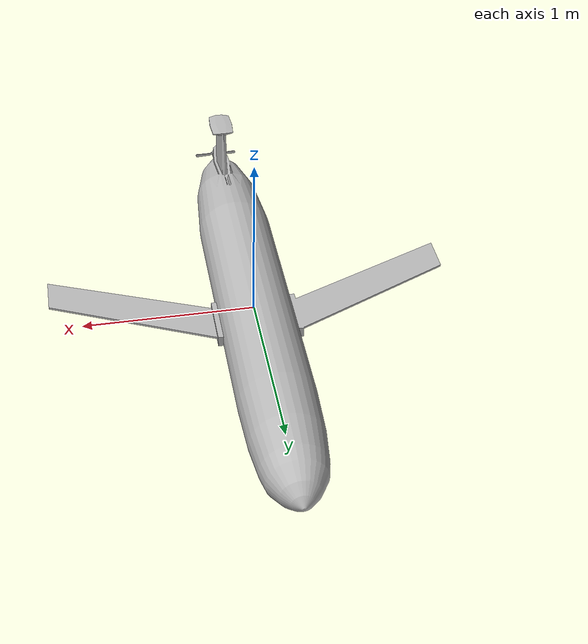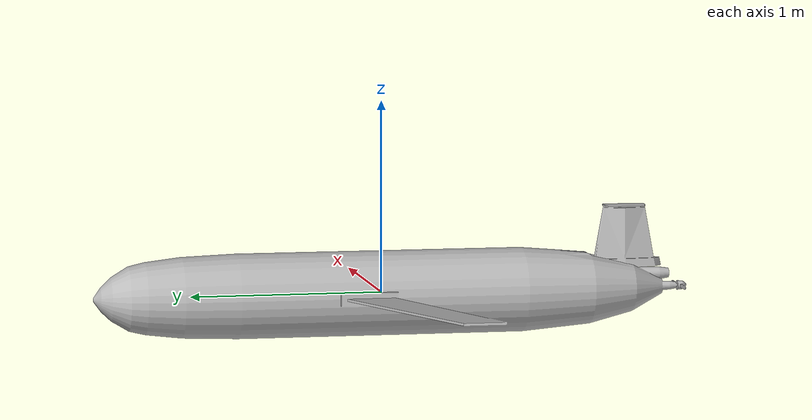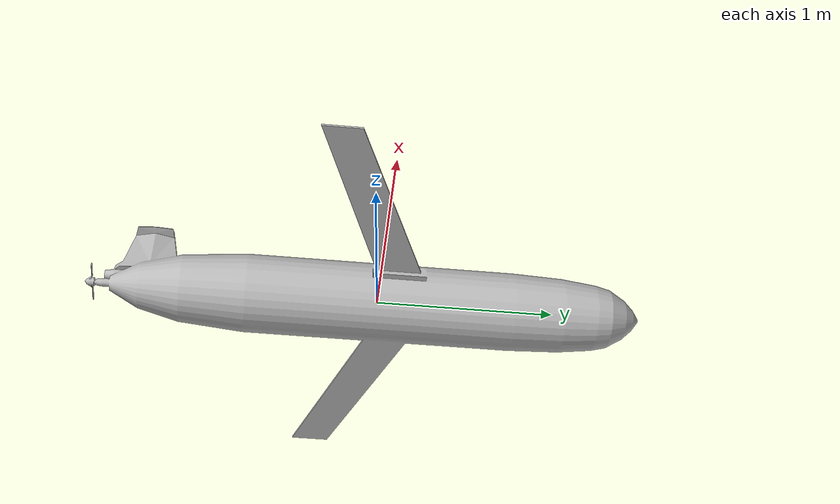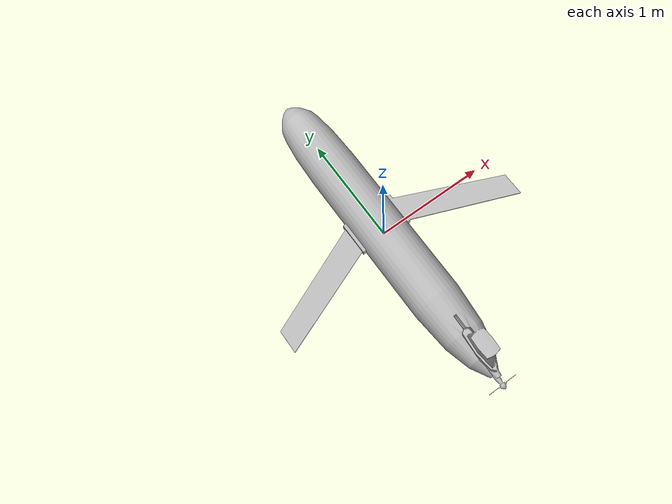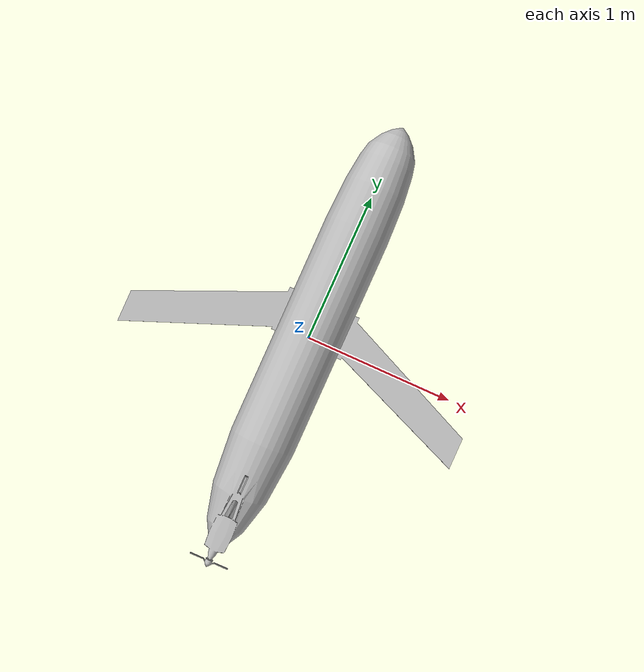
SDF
<?xml version="1.0"?>
<sdf version="1.6">
  <model name="glider_slocum">
    <static>false</static>
    <link name="base_link">
      <visual name="base_link_visual">
        <pose>0 0 0 0 0 0</pose>
        <geometry>
          <mesh>
            <scale>1.0 1.0 1.0</scale>
            <uri>model://glider_slocum/mesh/Slocum-Glider.dae</uri>
          </mesh>
        </geometry>
      </visual>
      <collision name="base_link_collision">
        <pose>0 0 0 0 0 0</pose>
        <geometry>
          <mesh>
            <scale>1.0 1.0 1.0</scale>
            <uri>model://glider_slocum/mesh/COLLISION-Slocum-Glider.dae</uri>
          </mesh>
        </geometry>
      </collision>
      <inertial>
          <pose>0 0 0 0 0 0</pose>
          <mass>69.25</mass>
          <inertia>
              <ixx>10</ixx>
              <ixy>0</ixy>
              <ixz>0</ixz>
              <iyy>10</iyy>
              <iyz>0</iyz>
              <izz>10</izz>
          </inertia>
      </inertial>
    </link>
    <link name='battery_link'>
      <pose>0 0 0 0 0 0</pose>
      <inertial>
        <pose>0 0 0 0 0 0</pose>
        <mass>0.001</mass>
        <inertia>
          <ixx>1e-05</ixx>
          <ixy>0</ixy>
          <ixz>0</ixz>
          <iyy>1e-05</iyy>
          <iyz>0</iyz>
          <izz>1e-05</izz>
        </inertia>
      </inertial>
      <battery name='battery'>
        <voltage>4.2</voltage>
      </battery>
    </link>
    <joint name='battery_joint' type='fixed'>
      <pose>0 0 0 0 0 0</pose>
      <parent>base_link</parent>
      <child>battery_link</child>
    </joint>
    <link name="propeller_link">
      <visual name="propeller_link_visual">
        <pose>0 0 0 0 0 0</pose>
        <geometry>
          <mesh>
            <scale>1.0 1.0 1.0</scale>
            <uri>model://glider_slocum/mesh/Slocum-Glider-Propeller.dae</uri>
          </mesh>
        </geometry>
      </visual>
      <inertial>
          <pose>0 0 0 0 0 0</pose>
          <inertia>
              <ixx>0.1</ixx>
              <ixy>0</ixy>
              <ixz>0</ixz>
              <iyy>0.1</iyy>
              <iyz>0</iyz>
              <izz>0.1</izz>
          </inertia>
          <mass>0.5</mass>
      </inertial>
    </link>
    <joint name="propeller_joint" type="revolute">
        <pose>0 0 0 0 0 0</pose>
        <parent>base_link</parent>
        <child>propeller_link</child>
        <axis>
            <xyz>0 1 0</xyz>
        </axis>
    </joint>
    <plugin name='linear_battery_ros_plugin' filename='liblinear_battery_ros_plugin.so'>
      <namespace>/</namespace>
      <link_name>battery_link</link_name>
      <battery_name>battery</battery_name>
      <open_circuit_voltage_constant_coef>3.7</open_circuit_voltage_constant_coef>
      <open_circuit_voltage_linear_coef>-3.1424</open_circuit_voltage_linear_coef>
      <initial_charge>1.1665</initial_charge>
      <capacity>0.5</capacity>
      <resistance>0.002</resistance>
      <smooth_current_tau>1.9499</smooth_current_tau>
      <update_rate>2.0</update_rate>
      <robotNamespace>/</robotNamespace>
    </plugin>
    <plugin name='glider_slocum_thruster_model' filename='libuuv_thruster_ros_plugin.so'>
      <linkName>propeller_link</linkName>
      <jointName>propeller_joint</jointName>
      <thrusterID>0</thrusterID>
      <dynamics>
        <type>FirstOrder</type>
        <timeConstant>0.1</timeConstant>
      </dynamics>
      <conversion>
        <type>Basic</type>
        <rotorConstant>4.9e-05</rotorConstant>
      </conversion>
      <robotNamespace>/</robotNamespace>
    </plugin>
    <plugin name='glider_slocum_plugin' filename='libuuv_underwater_object_ros_plugin.so'>
      <fluid_density>1027.0</fluid_density>
      <flow_velocity_topic>hydrodynamics/current_velocity</flow_velocity_topic>
      <debug>0</debug>
      <link name='base_link'>
        <volume>0.0679998770412</volume>
        <center_of_buoyancy>0 0 0.06</center_of_buoyancy>
        <neutrally_buoyant>0</neutrally_buoyant>
        <hydrodynamic_model>
          <type>fossen</type>
          <added_mass>
            4  0   0   0    0   0
            0  95  0   0    0   0
            0  0   75  0    0   0
            0  0   0   0.4  0   0
            0  0   0   0    27  0
            0  0   0   0    0   32
          </added_mass>
          <linear_damping_forward_speed>
            -8   0    0     0    0    0
             0  -162  0     0    0    150
             0   0   -108   0   -100  0
             0   0    0    -13   0    0
             0   0    37    0   -20   0
             0  -34   0     0    0   -32
          </linear_damping_forward_speed>
        </hydrodynamic_model>
      </link>
      <robotNamespace>/</robotNamespace>
    </plugin>
  </model>
</sdf>
